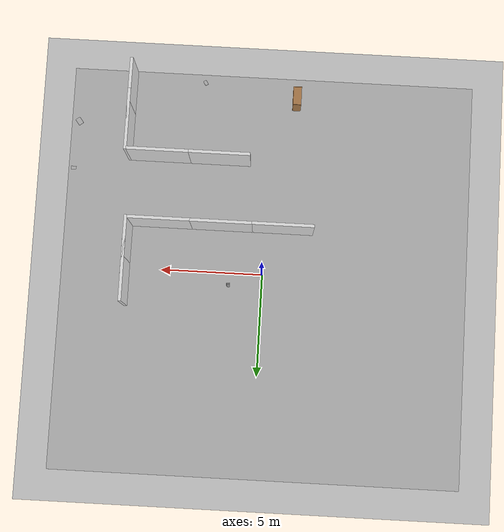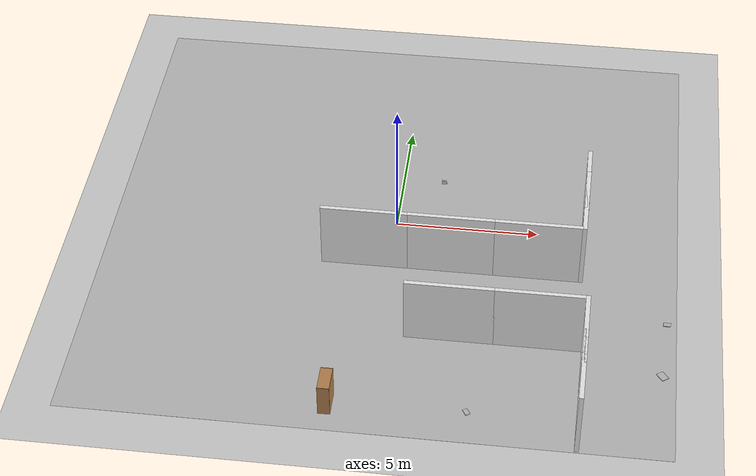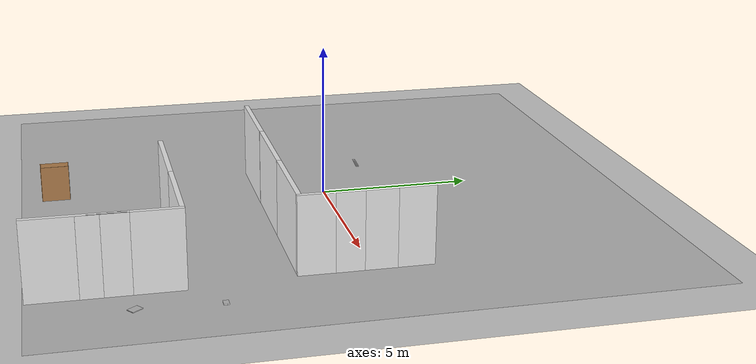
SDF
<sdf version="1.7">
 <world name="default">
  <model name="ground_plane">
   <static>1</static>
   <link name="link">
    <collision name="collision">
     <geometry><plane><normal>0 0 1</normal><size>100 100</size></plane></geometry>
     <surface><friction><ode><mu>1</mu><mu2>1</mu2></ode></friction></surface>
    </collision>
    <visual name="visual">
     <cast_shadows>0</cast_shadows>
     <geometry><plane><normal>0 0 1</normal><size>100 100</size></plane></geometry>
     <material>
      <script><uri>file://media/materials/scripts/gazebo.material</uri><name>Gazebo/Grey</name></script>
     </material>
    </visual>
    <velocity_decay><linear>0</linear><angular>0</angular></velocity_decay>
   </link>
  </model>
  <model name="bookshelf">
   <static>1</static>
   <link name="link">
    <inertial><mass>1</mass></inertial>
    <collision name="back">
     <pose>0 0.005 0.6 0 -0 0</pose>
     <geometry><box><size>0.9 0.01 1.2</size></box></geometry>
    </collision>
    <visual name="visual1">
     <pose>0 0.005 0.6 0 -0 0</pose>
     <geometry><box><size>0.9 0.01 1.2</size></box></geometry>
     <material>
      <script><uri>file://media/materials/scripts/gazebo.material</uri><name>Gazebo/Wood</name></script>
     </material>
    </visual>
    <collision name="left_side">
     <pose>0.45 -0.195 0.6 0 -0 0</pose>
     <geometry><box><size>0.02 0.4 1.2</size></box></geometry>
    </collision>
    <visual name="visual2">
     <pose>0.45 -0.195 0.6 0 -0 0</pose>
     <geometry><box><size>0.02 0.4 1.2</size></box></geometry>
     <material>
      <script><uri>file://media/materials/scripts/gazebo.material</uri><name>Gazebo/Wood</name></script>
     </material>
    </visual>
    <collision name="right_side">
     <pose>-0.45 -0.195 0.6 0 -0 0</pose>
     <geometry><box><size>0.02 0.4 1.2</size></box></geometry>
    </collision>
    <visual name="visual3">
     <pose>-0.45 -0.195 0.6 0 -0 0</pose>
     <geometry><box><size>0.02 0.4 1.2</size></box></geometry>
     <material>
      <script><uri>file://media/materials/scripts/gazebo.material</uri><name>Gazebo/Wood</name></script>
     </material>
    </visual>
    <collision name="bottom">
     <pose>0 -0.195 0.03 0 -0 0</pose>
     <geometry><box><size>0.88 0.4 0.06</size></box></geometry>
    </collision>
    <visual name="visual4">
     <pose>0 -0.195 0.03 0 -0 0</pose>
     <geometry><box><size>0.88 0.4 0.06</size></box></geometry>
     <material>
      <script><uri>file://media/materials/scripts/gazebo.material</uri><name>Gazebo/Wood</name></script>
     </material>
    </visual>
    <collision name="top">
     <pose>0 -0.195 1.19 0 -0 0</pose>
     <geometry><box><size>0.88 0.4 0.02</size></box></geometry>
    </collision>
    <visual name="visual5">
     <pose>0 -0.195 1.19 0 -0 0</pose>
     <geometry><box><size>0.88 0.4 0.02</size></box></geometry>
     <material>
      <script><uri>file://media/materials/scripts/gazebo.material</uri><name>Gazebo/Wood</name></script>
     </material>
    </visual>
    <collision name="low_shelf">
     <pose>0 -0.195 0.43 0 -0 0</pose>
     <geometry><box><size>0.88 0.4 0.02</size></box></geometry>
    </collision>
    <visual name="visual6">
     <pose>0 -0.195 0.43 0 -0 0</pose>
     <geometry><box><size>0.88 0.4 0.02</size></box></geometry>
     <material>
      <script><uri>file://media/materials/scripts/gazebo.material</uri><name>Gazebo/Wood</name></script>
     </material>
    </visual>
    <collision name="high_shelf">
     <pose>0 -0.195 0.8 0 -0 0</pose>
     <geometry><box><size>0.88 0.4 0.02</size></box></geometry>
    </collision>
    <visual name="visual7">
     <pose>0 -0.195 0.8 0 -0 0</pose>
     <geometry><box><size>0.88 0.4 0.02</size></box></geometry>
     <material>
      <script><uri>file://media/materials/scripts/gazebo.material</uri><name>Gazebo/Wood</name></script>
     </material>
    </visual>
   </link>
   <pose>-1.08243 -8.86921 0 0 0 -1.56827</pose>
  </model>
  <model name="book_14">
   <link name="cover">
    <pose>0 -0.000108 0.015405 0 -0 0</pose>
    <visual name="visual">
     <geometry><box><size>0.245 0.16 0.03</size></box></geometry>
     <material>
      <script>
       <uri>model://book_14/materials/scripts</uri>
       <uri>model://book_14/materials/textures</uri>
       <name>book_14</name>
      </script>
     </material>
    </visual>
    <collision name="collision"><geometry><box><size>0.245 0.16 0.03</size></box></geometry></collision>
   </link>
   <link name="page">
    <pose>0 0.000608 0.015405 0 -0 0</pose>
    <visual name="visual">
     <geometry><box><size>0.24502 0.15862 0.028</size></box></geometry>
     <material>
      <lighting>1</lighting>
      <ambient>1 1 1 1</ambient>
      <diffuse>1 1 1 1</diffuse>
      <specular>0.01 0.01 0.01 1</specular>
      <emissive>0 0 0 1</emissive>
      <shader type="vertex"><normal_map>__default__</normal_map></shader>
     </material>
    </visual>
    <collision name="collision"><geometry><box><size>0.245 0.16 0.03</size></box></geometry></collision>
   </link>
   <static>1</static>
   <pose>1.59296 0.675656 1.51705 -0.001887 1.13528 1.58829</pose>
  </model>
  <model name="book_18">
   <link name="cover">
    <pose>0 -0.000108 0.015405 0 -0 0</pose>
    <visual name="visual">
     <geometry><box><size>0.245 0.16 0.03</size></box></geometry>
     <material>
      <script>
       <uri>model://book_18/materials/scripts</uri>
       <uri>model://book_18/materials/textures</uri>
       <name>book_18</name>
      </script>
     </material>
    </visual>
    <collision name="collision"><geometry><box><size>0.245 0.16 0.03</size></box></geometry></collision>
   </link>
   <link name="page">
    <pose>0 0.000608 0.015405 0 -0 0</pose>
    <visual name="visual">
     <geometry><box><size>0.24502 0.15862 0.028</size></box></geometry>
     <material>
      <lighting>1</lighting>
      <ambient>1 1 1 1</ambient>
      <diffuse>1 1 1 1</diffuse>
      <specular>0.01 0.01 0.01 1</specular>
      <emissive>0 0 0 1</emissive>
      <shader type="vertex"><normal_map>__default__</normal_map></shader>
     </material>
    </visual>
    <collision name="collision"><geometry><box><size>0.245 0.16 0.03</size></box></geometry></collision>
   </link>
   <static>1</static>
   <pose>1.5794 0.721517 1.51174 -0.022284 1.06499 1.55051</pose>
  </model>
  <model name="newspaper_2">
   <link name="link_0">
    <visual name="visual">
     <geometry><box><size>0.35 0.25 0.02</size></box></geometry>
     <material>
      <script>
       <uri>model://newspaper_2/materials/scripts</uri>
       <uri>model://newspaper_2/materials/textures</uri>
       <name>newspaper_2</name>
      </script>
     </material>
    </visual>
    <collision name="collision"><geometry><box><size>0.35 0.25 0.02</size></box></geometry></collision>
   </link>
   <static>1</static>
   <pose>9.42495 -7.10849 0.77593 0 0 -0.934541</pose>
  </model>
  <model name="book_18_0">
   <link name="cover">
    <pose>0 -0.000108 0.015405 0 -0 0</pose>
    <visual name="visual">
     <geometry><box><size>0.245 0.16 0.03</size></box></geometry>
     <material>
      <script>
       <uri>model://book_18/materials/scripts</uri>
       <uri>model://book_18/materials/textures</uri>
       <name>book_18</name>
      </script>
     </material>
    </visual>
    <collision name="collision"><geometry><box><size>0.245 0.16 0.03</size></box></geometry></collision>
   </link>
   <link name="page">
    <pose>0 0.000608 0.015405 0 -0 0</pose>
    <visual name="visual">
     <geometry><box><size>0.24502 0.15862 0.028</size></box></geometry>
     <material>
      <lighting>1</lighting>
      <ambient>1 1 1 1</ambient>
      <diffuse>1 1 1 1</diffuse>
      <specular>0.01 0.01 0.01 1</specular>
      <emissive>0 0 0 1</emissive>
      <shader type="vertex"><normal_map>__default__</normal_map></shader>
     </material>
    </visual>
    <collision name="collision"><geometry><box><size>0.245 0.16 0.03</size></box></geometry></collision>
   </link>
   <static>1</static>
   <pose>3.29779 -9.39066 0.764084 0 0 -1.01851</pose>
  </model>
  <model name="book_14_1">
   <link name="cover">
    <pose>0 -0.000108 0.015405 0 -0 0</pose>
    <visual name="visual">
     <geometry><box><size>0.245 0.16 0.03</size></box></geometry>
     <material>
      <script>
       <uri>model://book_14/materials/scripts</uri>
       <uri>model://book_14/materials/textures</uri>
       <name>book_14</name>
      </script>
     </material>
    </visual>
    <collision name="collision"><geometry><box><size>0.245 0.16 0.03</size></box></geometry></collision>
   </link>
   <link name="page">
    <pose>0 0.000608 0.015405 0 -0 0</pose>
    <visual name="visual">
     <geometry><box><size>0.24502 0.15862 0.028</size></box></geometry>
     <material>
      <lighting>1</lighting>
      <ambient>1 1 1 1</ambient>
      <diffuse>1 1 1 1</diffuse>
      <specular>0.01 0.01 0.01 1</specular>
      <emissive>0 0 0 1</emissive>
      <shader type="vertex"><normal_map>__default__</normal_map></shader>
     </material>
    </visual>
    <collision name="collision"><geometry><box><size>0.245 0.16 0.03</size></box></geometry></collision>
   </link>
   <static>1</static>
   <pose>9.54563 -4.75392 0.763218 0 -0 0</pose>
  </model>
  <model name="Floor_room">
   <link name="main">
    <pose>0 0 0.01 0 -0 0</pose>
    <collision name="main_Collision"><geometry><box><size>20 20 0.001</size></box></geometry></collision>
    <visual name="main_Visual">
     <geometry><box><size>20 20 0.001</size></box></geometry>
     <material>
      <script>
       <uri>model://Floor_room/materials/scripts</uri>
       <uri>model://Floor_room/materials/textures</uri>
       <name>floor_room</name>
      </script>
     </material>
    </visual>
   </link>
   <static>1</static>
   <pose>-0.0718 -0.016894 0.012233 0 -0 0</pose>
  </model>
  <model name="office_env_w_single_2">
   <link name="wall">
    <visual name="wall_visual">
     <geometry><box><size>3 0.15 2.5</size></box></geometry>
     <pose>0 0 1.25 0 -0 0</pose>
     <material>
      <script>
       <uri>model://office_env_single/materials/scripts</uri>
       <uri>model://office_env_single/materials/textures</uri>
       <name>wall_white</name>
      </script>
     </material>
    </visual>
    <pose>0 0 0 0 -0 3.14159</pose>
   </link>
   <static>1</static>
   <pose>5.06387 -2.19908 0 0 -0 0</pose>
   <collide>0</collide>
  </model>
  <model name="office_env_w_single_3">
   <link name="wall">
    <visual name="wall_visual">
     <geometry><box><size>3 0.15 2.5</size></box></geometry>
     <pose>0 0 1.25 0 -0 0</pose>
     <material>
      <script>
       <uri>model://office_env_single/materials/scripts</uri>
       <uri>model://office_env_single/materials/textures</uri>
       <name>wall_white</name>
      </script>
     </material>
    </visual>
    <pose>0 0 0 0 -0 3.14159</pose>
   </link>
   <static>1</static>
   <pose>2.08129 -2.19908 0 0 -0 0</pose>
   <collide>0</collide>
  </model>
  <model name="office_env_w_single_5">
   <link name="wall">
    <visual name="wall_visual">
     <geometry><box><size>3 0.15 2.5</size></box></geometry>
     <pose>0 0 1.25 0 -0 0</pose>
     <material>
      <script>
       <uri>model://office_env_single/materials/scripts</uri>
       <uri>model://office_env_single/materials/textures</uri>
       <name>wall_white</name>
      </script>
     </material>
    </visual>
    <pose>0 0 0 0 -0 3.14159</pose>
   </link>
   <static>1</static>
   <pose>-0.89459 -2.20372 0 0 -0 0</pose>
   <collide>0</collide>
  </model>
  <model name="office_env_w_single_7">
   <link name="main">
    <visual name="wall_visual">
     <geometry><box><size>3 0.15 2.5</size></box></geometry>
     <pose>0 0 1.25 0 -0 0</pose>
     <material>
      <script>
       <uri>model://office_env_single/materials/scripts</uri>
       <uri>model://office_env_single/materials/textures</uri>
       <name>wall_white</name>
      </script>
     </material>
    </visual>
   </link>
   <static>1</static>
   <pose>6.62935 0.359875 0 0 -0 1.57064</pose>
   <collide>0</collide>
  </model>
  <model name="office_env_w_single_8">
   <link name="main">
    <visual name="wall_visual">
     <geometry><box><size>3 0.15 2.5</size></box></geometry>
     <pose>0 0 1.25 0 -0 0</pose>
     <material>
      <script>
       <uri>model://office_env_single/materials/scripts</uri>
       <uri>model://office_env_single/materials/textures</uri>
       <name>wall_white</name>
      </script>
     </material>
    </visual>
   </link>
   <static>1</static>
   <pose>6.62518 -0.775081 0 0 -0 1.56283</pose>
   <collide>0</collide>
  </model>
  <model name="office_env_w_single_16">
   <link name="main">
    <visual name="wall_visual">
     <geometry><box><size>3 0.15 2.5</size></box></geometry>
     <pose>0 0 1.25 0 -0 0</pose>
     <material>
      <script>
       <uri>model://office_env_single/materials/scripts</uri>
       <uri>model://office_env_single/materials/textures</uri>
       <name>wall_white</name>
      </script>
     </material>
    </visual>
   </link>
   <static>1</static>
   <pose>2.35563 -5.52176 0 0 -0 0</pose>
   <collide>0</collide>
  </model>
  <model name="office_env_w_single_17">
   <link name="main">
    <visual name="wall_visual">
     <geometry><box><size>3 0.15 2.5</size></box></geometry>
     <pose>0 0 1.25 0 -0 0</pose>
     <material>
      <script>
       <uri>model://office_env_single/materials/scripts</uri>
       <uri>model://office_env_single/materials/textures</uri>
       <name>wall_white</name>
      </script>
     </material>
    </visual>
   </link>
   <static>1</static>
   <pose>5.33185 -5.52176 0 0 -0 0</pose>
   <collide>0</collide>
  </model>
  <model name="office_env_w_single_18">
   <link name="main">
    <visual name="wall_visual">
     <geometry><box><size>3 0.15 2.5</size></box></geometry>
     <pose>0 0 1.25 0 -0 0</pose>
     <material>
      <script>
       <uri>model://office_env_single/materials/scripts</uri>
       <uri>model://office_env_single/materials/textures</uri>
       <name>wall_white</name>
      </script>
     </material>
    </visual>
   </link>
   <static>1</static>
   <pose>6.86002 -6.95156 0 0 -0 1.56588</pose>
   <collide>0</collide>
  </model>
  <model name="office_env_w_single_19">
   <link name="main">
    <visual name="wall_visual">
     <geometry><box><size>3 0.15 2.5</size></box></geometry>
     <pose>0 0 1.25 0 -0 0</pose>
     <material>
      <script>
       <uri>model://office_env_single/materials/scripts</uri>
       <uri>model://office_env_single/materials/textures</uri>
       <name>wall_white</name>
      </script>
     </material>
    </visual>
   </link>
   <static>1</static>
   <pose>6.84999 -8.47093 0 0 -0 1.56216</pose>
   <collide>0</collide>
  </model>
 </world>
</sdf>
